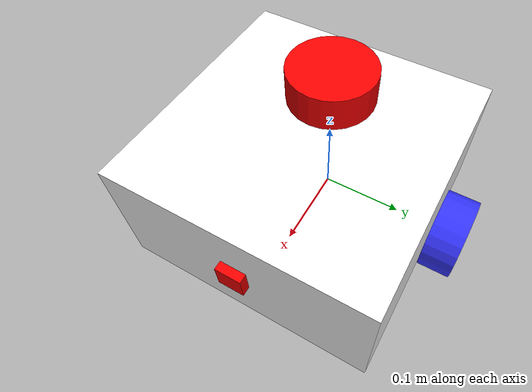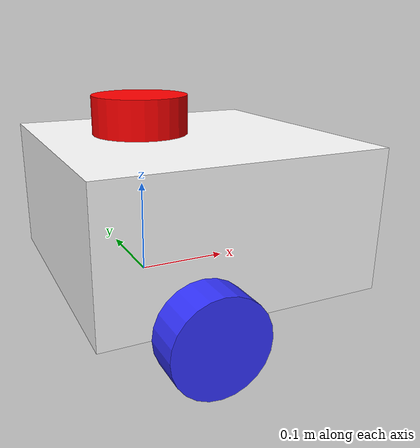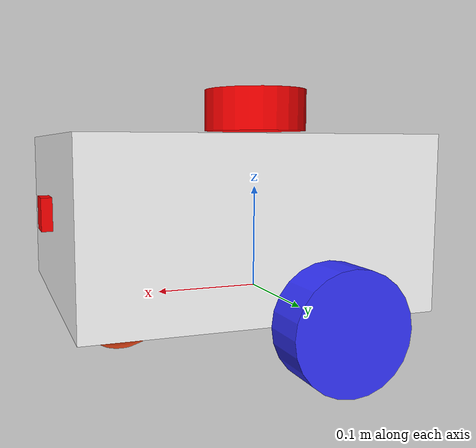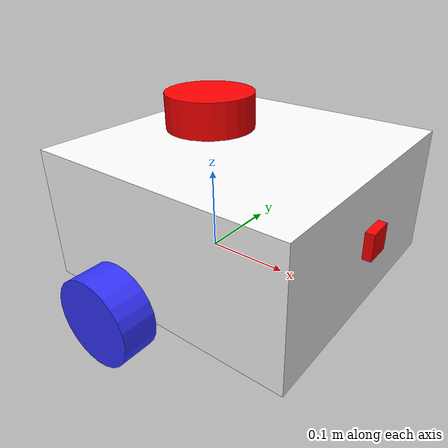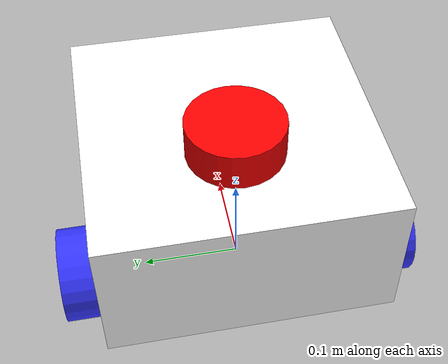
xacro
<?xml version="1.0"?>
<robot xmlns:xacro="http://www.ros.org/wiki/xacro"  name="robot">

    <xacro:arg name="use_ros2_controller" default="true"/>

    <xacro:include filename="robot_core.xacro" />

    <xacro:if value="$(arg use_ros2_controller)">
        <xacro:include filename="ros2_control.xacro" />
    </xacro:if>
    <xacro:unless value="$(arg use_ros2_controller)">
        <xacro:include filename="gazebo_control.xacro" />
    </xacro:unless>

    <xacro:include filename="lidar.xacro"/>
    <xacro:include filename="camera.xacro"/>

</robot>

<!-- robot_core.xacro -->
<robot xmlns:xacro="http://www.ros.org/wiki/xacro">

    <xacro:include filename="inertial_macros.xacro"/>

    <material name='white'>
        <color rgba='1 1 1 1' />
    </material>

    <material name='orange'>
        <color rgba='1 0.3 0.1 1' />
    </material>

    <material name='blue'>
        <color rgba='0.2 0.2 1 1' />
    </material>

    <material name='black'>
        <color rgba='0 0 0 1' />
    </material>

    <material name='red'>
        <color rgba='1 0 0 1' />
    </material>

    <!-- BASE LINK -->
    <link name="base_link"/>

    <!-- CHASSIS LINK -->
    <joint name="chassis_joint" type="fixed">
        <parent link="base_link"/>
        <child link="chassis_link"/>
        <origin xyz="-0.1 0.0 0.0" rpy="0.0 0.0 0.0"/>
    </joint>

    <link name="chassis_link">
        <visual>
            <origin xyz="0.15 0.0 0.075" rpy="0.0 0.0 0.0"/>
            <geometry>
                <box size="0.3 0.3 0.15"/>
            </geometry>
            <material name='white'/>
        </visual>

        <collision>
            <origin xyz="0.15 0.0 0.075" rpy="0.0 0.0 0.0"/>
            <geometry>
                <box size="0.3 0.3 0.15"/>
            </geometry>
        </collision>

        <xacro:inertial_box mass='0.5' x='0.3' y='0.3' z='0.15'>
            <origin xyz="0.15 0.0 0.075" rpy="0.0 0.0 0.0"/>
        </xacro:inertial_box>
    </link>

    <gazebo reference='chassis_link'>
        <material>Gazebo/White</material>
    </gazebo>

    <!-- LEFT WHEEL LINK -->

    <joint name="left_wheel_joint" type="continuous">
        <parent link="base_link"/>
        <child link="left_wheel_link"/>
        <origin xyz="0 0.17 0" rpy="-${pi/2} 0 0" />
        <axis xyz="0 0 1"/>
    </joint>

    <link name="left_wheel_link">
        <visual>
            <geometry>
                <cylinder radius="0.05" length="0.04"/>
            </geometry>
            <material name='blue'/>
        </visual>

        <collision>
            <geometry>
                <sphere radius="0.05" />
            </geometry>
        </collision>

        <xacro:inertial_cylinder mass='0.5' radius="0.05" length="0.04">
            <origin xyz="0 0 0" rpy="0.0 0.0 0.0"/>
        </xacro:inertial_cylinder>
    </link>

    <gazebo reference='left_wheel_link'>
        <material>Gazebo/Blue</material>
    </gazebo>

    <!-- RIGHT WHEEL LINK -->

    <joint name="right_wheel_joint" type="continuous">
        <parent link="base_link"/>
        <child link="right_wheel_link"/>
        <origin xyz="0 -0.17 0" rpy="${pi/2} 0 0" />
        <axis xyz="0 0 -1"/>
    </joint>

    <link name="right_wheel_link">
        <visual>
            <geometry>
                <cylinder radius="0.05" length="0.04"/>
            </geometry>
            <material name='blue'/>
        </visual>

        <collision>
            <geometry>
                <sphere radius="0.05" />
            </geometry>
        </collision>

        <xacro:inertial_cylinder mass='0.5' radius="0.05" length="0.04">
            <origin xyz="0 0 0" rpy="0.0 0.0 0.0"/>
        </xacro:inertial_cylinder>
    </link>

    <gazebo reference='right_wheel_link'>
        <material>Gazebo/Blue</material>
    </gazebo>

    <!-- CASTER WHEEL LINK -->

    <joint name="caster_wheel_join" type="fixed">
        <parent link="chassis_link"/>
        <child link="caster_wheel_link"/>
        <origin xyz="0.24 0.0 0.0" rpy="0.0 0.0 0.0"/>
    </joint>

    <link name="caster_wheel_link">
        <visual>
            <geometry>
                <sphere radius="0.05"/>
            </geometry>
            <material name='orange'/>
        </visual>

        <collision>
            <geometry>
                <sphere radius="0.05"/>
            </geometry>
        </collision>

        <xacro:inertial_sphere mass='0.5' radius="0.05">
            <origin xyz="0 0 0" rpy="0.0 0.0 0.0"/>
        </xacro:inertial_sphere>
    </link>

    <gazebo reference='caster_wheel_link'>
        <material>Gazebo/Orange</material>
        <mu1 value='0.001'/>
        <mu2 value='0.001'/>
    </gazebo>

</robot>

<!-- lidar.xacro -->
<robot xmlns:xacro="http://www.ros.org/wiki/xacro">

    <joint name="laser_joint" type="fixed">
        <parent link="chassis_link"/>
        <child link="laser_frame"/>
        <origin xyz="0.1 0.0 0.175" rpy="0.0 0.0 0.0"/>
    </joint>

    <link name="laser_frame">
        <visual>
            <geometry>
                <cylinder radius="0.05" length="0.04"/>
            </geometry>
            <material name='red'/>
        </visual>

        <collision>
            <geometry>
                <cylinder radius="0.05" length="0.04"/>
            </geometry>
        </collision>

        <xacro:inertial_cylinder mass='0.5' radius="0.05" length="0.04">
            <origin xyz="0 0 0" rpy="0.0 0.0 0.0"/>
        </xacro:inertial_cylinder>
    </link>

    <gazebo reference="laser_frame">
        <material>Gazebo/Red</material>

        <sensor name="laser" type="ray">
            <pose> 0 0 0 0 0 0 </pose>
            <visualize>false</visualize>
            <update_rate>10</update_rate>
            <ray>
                <scan>
                    <horizontal>
                        <samples>360</samples>
                        <min_angle>-3.14</min_angle>
                        <max_angle>3.14</max_angle>
                    </horizontal>
                </scan>
                <range>
                    <min>0.3</min>
                    <max>12</max>
                </range>
            </ray>
            <plugin name="laser_controller" filename="libgazebo_ros_ray_sensor.so">
                <ros>
                    <argument>~/out:=scan</argument>
                </ros>
                <output_type>sensor_msgs/LaserScan</output_type>
                <frame_name>laser_frame</frame_name>
            </plugin>
        </sensor>
    </gazebo>

</robot>

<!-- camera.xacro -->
<robot xmlns:xacro="http://www.ros.org/wiki/xacro" >

    <joint name="camera_joint" type="fixed">
        <parent link="chassis_link"/>
        <child link="camera_link"/>
        <origin xyz="0.305 0 0.08" rpy="0 0 0"/>
    </joint>

    <link name="camera_link">
        <visual>
            <geometry>
                <box size="0.010 0.03 0.03"/>
            </geometry>
            <material name="red"/>
        </visual>
    </link>

    <joint name="camera_optical_joint" type="fixed">
        <parent link="camera_link"/>
        <child link="camera_link_optical"/>
        <origin xyz="0 0 0" rpy="${-pi/2} 0 ${-pi/2}"/>
    </joint>

    <link name="camera_link_optical"></link>

    <gazebo reference="camera_link">
        <material>Gazebo/Red</material>

        <sensor name="camera" type="camera">
            <pose> 0 0 0 0 0 0 </pose>
            <visualize>true</visualize>
            <update_rate>10</update_rate>
            <camera>
                <horizontal_fov>1.089</horizontal_fov>
                <image>
                    <format>R8G8B8</format>
                    <width>640</width>
                    <height>480</height>
                </image>
                <clip>
                    <near>0.05</near>
                    <far>8.0</far>
                </clip>
            </camera>
            <plugin name="camera_controller" filename="libgazebo_ros_camera.so">
                <frame_name>camera_link_optical</frame_name>
            </plugin>
        </sensor>
    </gazebo>

</robot>
